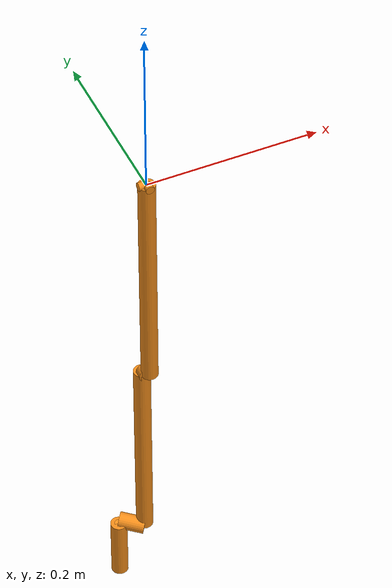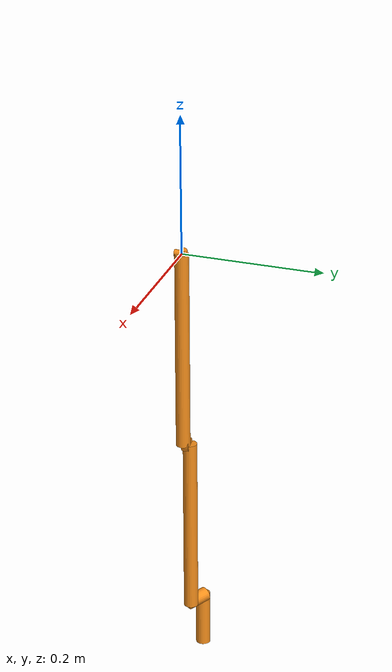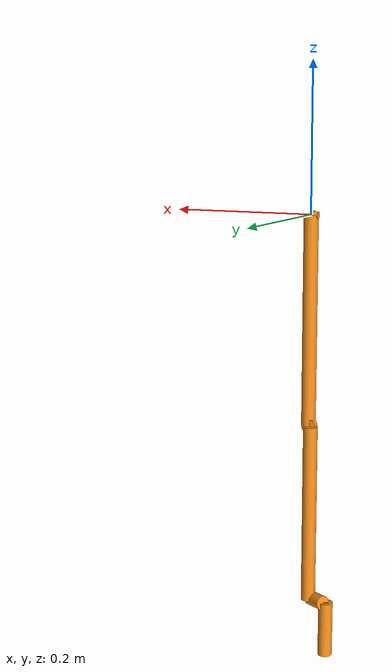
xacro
<?xml version="1.0"?>
<robot xmlns:xacro="http://www.ros.org/wiki/xacro" name="human_arm">
    <xacro:property name="scale" value="${1}" />
    <xacro:property name="bone_density" value="${1850 * 10000}" />

    <xacro:property name="len_humerus_y" value="${0.2904*scale}" />
    <xacro:property name="len_ulna_z" value="${0.0200*scale}" />
    <xacro:property name="len_humerus_z" value="${0.0123 * scale}" />
    <xacro:property name="len_humerus_x" value="${0.0061*scale}" />
    <xacro:property name="len_ulna_y" value="${0.0115*scale}" />
    <xacro:property name="len_radius_y" value=" ${0.2420*scale}" />
    <xacro:property name="len_radius_yprime" value="${0.0040*scale}" />
    <xacro:property name="len_radius_d" value="${0.0292*scale}" />
    <xacro:property name="len_radius_a" value="${0.0105*scale}" />

    <!--Limits interfere with transformations. There is therefor given full range for each link temporarily-->
    <xacro:property name="joint1_lower" value="${radians(-90)}" />
    <xacro:property name="joint1_upper" value="${radians(130)}" />
    <xacro:property name="joint2_lower" value="${radians(0)}" />
    <xacro:property name="joint2_upper" value="${radians(180)}" />
    <xacro:property name="joint3_lower" value="${radians(-220)}" /><!-- Humerus does not make any sense-->
    <xacro:property name="joint3_upper" value="${radians(110)}" />
    <xacro:property name="joint4_lower" value="${radians(0)}" />
    <xacro:property name="joint4_upper" value="${radians(130)}" />
    <xacro:property name="joint5_lower" value="${radians(-90)}" />
    <xacro:property name="joint5_upper" value="${radians(90)}" />
    <xacro:property name="joint6_lower" value="${radians(-10)}" />
    <xacro:property name="joint6_upper" value="${radians(25)}" />
    <xacro:property name="joint7_lower" value="${radians(-35)}" />
    <xacro:property name="joint7_upper" value="${radians(35)}" />

    <xacro:macro name ="ax_to_rpy" params="ax:=0 ay:=0 az:=0 bx:=0 by:=0 bz:=0">
        <xacro:if value="${bx != 0 or by != 0 or bz != 0}">
            <xacro:property name="rvx" value="${ay*bz-az*by}" />
            <xacro:property name="rvy" value="${az*bx-ax*bz}" />
            <xacro:property name="rvz" value="${ax*by-ay*bx}" />
            <xacro:property name="angle" value="${acos((ax*bx + ay*by + az*bz)/(sqrt(pow(ax,2) + pow(ay,2) + pow(az,2)) * sqrt(pow(bx,2) + pow(by,2) + pow(bz, 2))))}" />

            <xacro:property name="r32" value="${rvy*rvz*(1-cos(angle)) + rvx*sin(angle)}" />
            <xacro:property name="r33" value="${pow(rvz,2)*(1-cos(angle))+cos(angle)}" />
            <xacro:property name="r31" value="${rvx*rvz*(1-cos(angle)) - rvy*sin(angle)}" />
            <xacro:property name="r21" value="${rvx*rvy*(1-cos(angle)) + rvz*sin(angle)}" />
            <xacro:property name="r11" value="${pow(rvx,2)*(1-cos(angle)) + cos(angle)}" />

            <xacro:property name="ax_roll" scope="parent" value="${atan2(r32, r33)}" />
            <xacro:property name="ax_pitch" scope="parent" value="${atan2(-r31, sqrt(pow(r32,2) + pow(r33,2)))}" />
            <xacro:property name="ax_yaw" scope="parent" value="${atan2(r21, r11)}" />
        </xacro:if>

        <xacro:if value="${bx == 0 and by == 0 and bz == 0}">
            <xacro:property name="ax_roll" scope="parent" value="0" />
            <xacro:property name="ax_pitch" scope="parent" value="0" />
            <xacro:property name="ax_yaw" scope="parent" value="0" />
        </xacro:if>

    </xacro:macro>

    <xacro:macro name="DH_inverse_translation" params="theta:=0 d:=0 a:=0 alpha:=0">
        <xacro:property name="dh_inverse_translation_x" scope="parent" value="${-a*cos(theta)}" />
        <xacro:property name="dh_inverse_translation_y" scope="parent" value="${a*sin(theta)+d*cos(alpha)*sin(alpha)*cos(theta)-d*sin(alpha)*cos(alpha)*cos(theta)}" />
        <xacro:property name="dh_inverse_translation_z" scope="parent" value="${-d*sin(alpha)*sin(alpha)-d*cos(alpha)*cos(alpha)}" />
    </xacro:macro>

    <xacro:macro name="dh_to_urdf" params = "theta:=0 d:=0 a:=0 alpha:=0">
        <xacro:property name="r32" value="${sin(alpha) * cos(theta)}" />
        <xacro:property name="r33" value="${cos(alpha)}" />
        <xacro:property name="r31" value="${sin(alpha)*sin(theta)}" />
        <xacro:property name="r21" value="${cos(alpha)*sin(theta)}" />
        <xacro:property name="r11" value="${cos(theta)}" />

        <xacro:property name="dh_to_urdf_roll" scope="parent" value="${atan2(r32, r33)}" />
        <xacro:property name="dh_to_urdf_pitch" scope="parent" value="${atan2(-r31, sqrt(pow(r32,2) + pow(r33,2)))}" />
        <xacro:property name="dh_to_urdf_yaw" scope="parent" value="${atan2(r21, r11)}" />

        <xacro:property name="dh_to_urdf_x" scope="parent" value="${a}" />
        <xacro:property name="dh_to_urdf_y" scope="parent" value="${-sin(alpha)*d}" />
        <xacro:property name="dh_to_urdf_z" scope="parent" value="${cos(alpha)*d}" />
    </xacro:macro>

    <xacro:macro name="DH_joint" params = "parent child *axis joint_t:=fixed theta:=0.0 d:=0.0 a:=0.0 alpha:=0.0 limit_lower:=0. limit_upper:=${2*pi} velocity:=0.5 effort:=1000.0">
            <xacro:dh_to_urdf theta="${theta}" d="${d}" a="${a}" alpha="${alpha}"/>
            <joint name = "joint_${parent}_${child}" type = "${joint_t}">
                <parent link = "${parent}"/>
                <child link = "${child}"/>
                <origin xyz="${dh_to_urdf_x} ${dh_to_urdf_y} ${dh_to_urdf_z}" rpy = "${dh_to_urdf_roll} ${dh_to_urdf_pitch} ${dh_to_urdf_yaw}"/>
                <xacro:if value="${joint_t == 'revolute' or joint_t == 'prismatic'}">
                    <xacro:insert_block name="axis"/>
                    <limit lower = "${limit_lower}" upper = "${limit_upper}" velocity="${velocity}" effort="${effort}"/>
                </xacro:if>
            </joint>

            <xacro:if value="${joint_t == 'revolute' or joint_t == 'prismatic'}">
                <transmission name="${parent}_trans">
                    <type>transmission_interface/SimpleTransmission</type>
                    <joint name="joint_${parent}_${child}">
                        <hardwareInterface>hardware_interface/EffortJointInterface</hardwareInterface>
                    </joint>
                    <actuator name="${parent}_motor">
                        <hardwareInterface>hardware_interface/EffortJointInterface</hardwareInterface>
                    </actuator>
                </transmission>
            </xacro:if>
    </xacro:macro>

    <xacro:macro name="DH_link" params="name theta:=0.0 d:=0.0 a:=0.0 alpha:=0.0 radius:=0.01">
        <xacro:DH_inverse_translation theta="${theta}" d="${d}" a="${a}" alpha="${alpha}"/>
        <xacro:ax_to_rpy az="1" bx="${dh_inverse_translation_x}" by="${dh_inverse_translation_y}" bz="${dh_inverse_translation_z}"/>
        <xacro:property name="length" value="${sqrt(pow(dh_inverse_translation_x, 2) + pow(dh_inverse_translation_y, 2) + pow(dh_inverse_translation_z, 2))}" />
        <link name="${name}">
            <visual>
                <origin xyz="${dh_inverse_translation_x/2} ${dh_inverse_translation_y/2} ${dh_inverse_translation_z/2}" rpy="${ax_roll} ${ax_pitch} ${ax_yaw}"/>
                <geometry>
                    <cylinder length="${length}"
                     radius="${radius}"/>
                </geometry>
            </visual>
            <collision>
                <origin xyz="${dh_inverse_translation_x/2} ${dh_inverse_translation_y/2} ${dh_inverse_translation_z/2}" rpy="${ax_roll} ${ax_pitch} ${ax_yaw}"/>
                <geometry>
                    <cylinder length="${length}"
                     radius="${radius}"/>
                </geometry>
            </collision>
            <inertial>
                <origin xyz="${dh_inverse_translation_x/2} ${dh_inverse_translation_y/2} ${dh_inverse_translation_z/2}" rpy="${ax_roll} ${ax_pitch} ${ax_yaw}"/>

                    <xacro:property name="mass" value="${bone_density*pi*pow(radius,2)*length}" />
                    <mass value="${mass}"/>
                    <inertia ixx="${1/12 * mass * (3*pow(radius,2) + pow(length,2))}"  ixy="0"  ixz="0" iyy="${1/12 * mass * (3*pow(radius,2) + pow(length,2))}"
                    iyz="0" izz="${1/2 * mass * pow(radius,2)}" />

            </inertial>
        </link>
    </xacro:macro>

    <!--Pseudo links. Gravity is also disabled.-->
    <xacro:property name="pseudo_a" value="${0.01}" />
    <xacro:property name="pseudo_radius" value="${0.005}" />

    <xacro:DH_link name="base_link" a="${pseudo_a}" radius="${pseudo_radius}"/>

    <xacro:DH_link name="Scaphant"  a="${pseudo_a}" radius="${pseudo_radius}"/>

    <xacro:DH_link name="Humphant"  a="${pseudo_a}" radius="${pseudo_radius}"/>

    <xacro:DH_link name="Humphant1"  a="${pseudo_a}" radius="${pseudo_radius}"/>

    <!-- Real links-->

    <xacro:DH_link name="Humerus" theta="${radians(-90)}" d="${-len_humerus_y}" alpha="${radians(-90)}" />

    <xacro:DH_link name="Ulna" theta="${radians(180)}" d="${len_ulna_z - len_humerus_z}" a="${-len_humerus_x}" alpha="${radians(-90)}" />

    <xacro:DH_link name="Radius" theta="${radians(-124.2)}" d="${-len_ulna_y - len_radius_y - len_radius_yprime}" alpha="${radians(-90)}" />

    <xacro:DH_link name="Z6" theta="${radians(101.3)}" d="${-len_radius_d}" a="${-len_radius_a}" alpha="${radians(97.8)}"  />

    <xacro:DH_link name="Hand" theta="${radians(-90)}" a="${-0.08}" alpha="${radians(-90)}"/>

    <!--Added pseudo link properties-->

    <xacro:DH_link name="Lunate" theta="${radians(13.7)}" alpha="${radians(-145)}" a="${pseudo_a}" radius="${pseudo_radius}"/>

    <!-- Human arm joints-->
    <xacro:DH_joint parent="base_link" child ="Scaphant" theta="${radians(90.0)}">
        <axis xyz="0 0 0"/>
    </xacro:DH_joint>

    <xacro:DH_joint parent="Scaphant" child ="Humphant" joint_t="revolute"
     limit_lower="${joint1_lower}" limit_upper="${joint1_upper}">
        <axis xyz="0 0 1"/>
    </xacro:DH_joint>

    <xacro:DH_joint parent="Humphant" child ="Humphant1" joint_t="revolute"
     alpha="${radians(90)}" limit_lower="${joint2_lower}"
     limit_upper="${joint2_upper}">
        <axis xyz="0 0 1"/>
    </xacro:DH_joint>

    <xacro:DH_joint parent="Humphant1" child ="Humerus" joint_t="revolute"
     theta="${radians(-90)}" d="${-len_humerus_y}" alpha="${radians(-90)}"
     limit_lower="${joint3_lower}" limit_upper="${joint3_upper}">
        <axis xyz="0 0 1"/>
    </xacro:DH_joint>

    <xacro:DH_joint parent="Humerus" child ="Ulna" joint_t="revolute"
     theta="${radians(180)}" d="${len_ulna_z - len_humerus_z}" a="${-len_humerus_x}" alpha="${radians(-90)}"
     limit_lower="${joint4_lower}" limit_upper="${joint4_upper}">
        <axis xyz="0 0 1"/>
    </xacro:DH_joint>

    <xacro:DH_joint parent="Ulna" child ="Radius" joint_t="revolute"
     theta="${radians(-124.2)}" d="${-len_ulna_y - len_radius_y - len_radius_yprime}" alpha="${radians(-90)}"
     limit_lower="${joint5_lower}" limit_upper="${joint5_upper}">
        <axis xyz="0 0 1"/>
    </xacro:DH_joint>

    <xacro:DH_joint parent="Radius" child ="Z6" joint_t="revolute"
     theta="${radians(101.3)}" d="${-len_radius_d}" a="${-len_radius_a}" alpha="${radians(97.8)}"
     limit_lower="${joint6_lower}" limit_upper="${joint6_upper}">
        <axis xyz="0 0 1"/>
    </xacro:DH_joint>

    <xacro:DH_joint parent="Z6" child ="Lunate" joint_t="revolute"
     theta="${radians(13.7)}" alpha="${radians(-145)}"
     limit_lower="${joint7_lower}" limit_upper="${joint7_upper}">
        <axis xyz="0 0 1"/>
    </xacro:DH_joint>

    <xacro:DH_joint parent="Lunate" child ="Hand"
     theta="${radians(-90)}" a="${-0.08}" alpha="${radians(-90)}">
        <axis xyz="0 0 0"/>
    </xacro:DH_joint>

    <!-- Import all Gazebo-customization elements, including Gazebo colors -->
    <xacro:include filename="$(find human_arm_description)/urdf/human_arm_description.gazebo" />
</robot>
